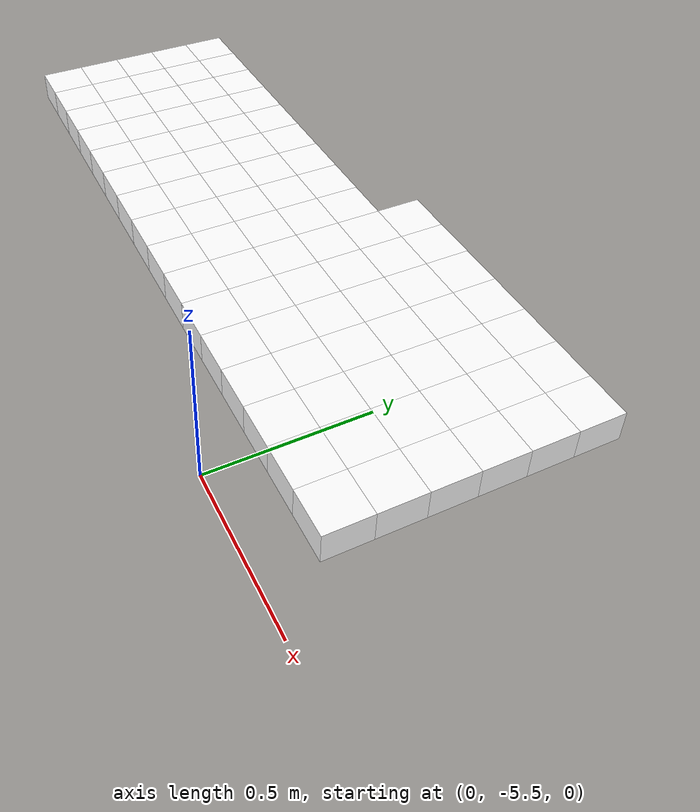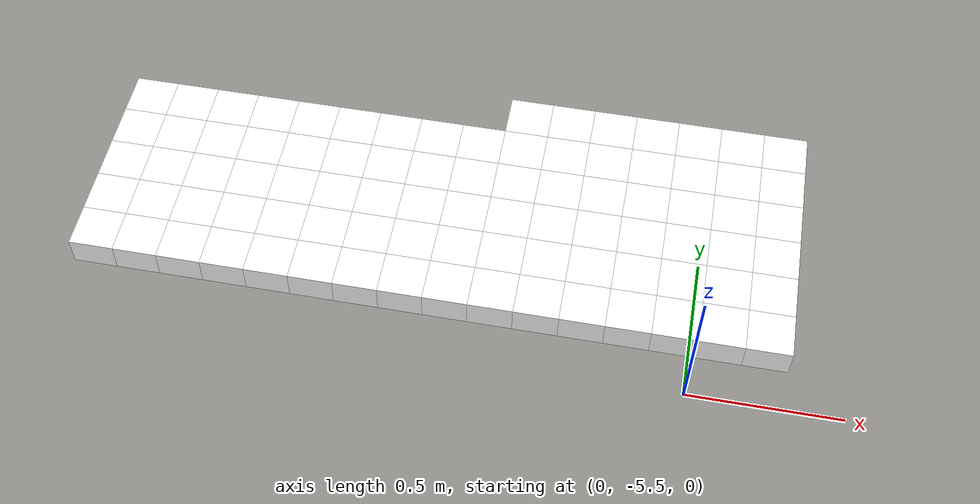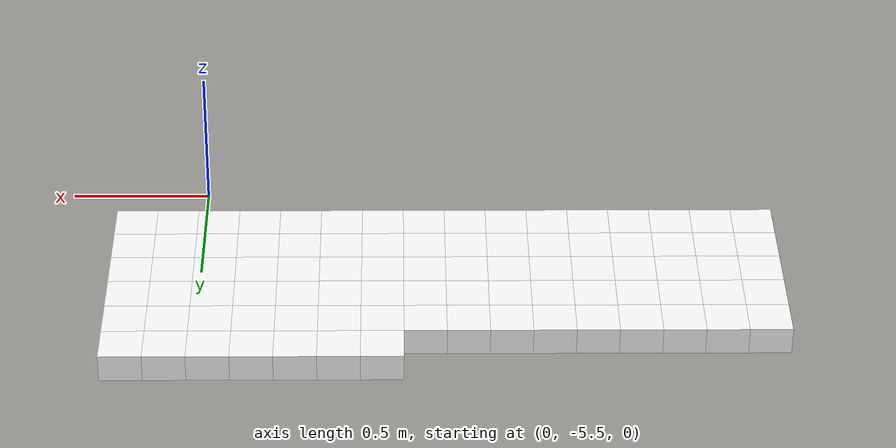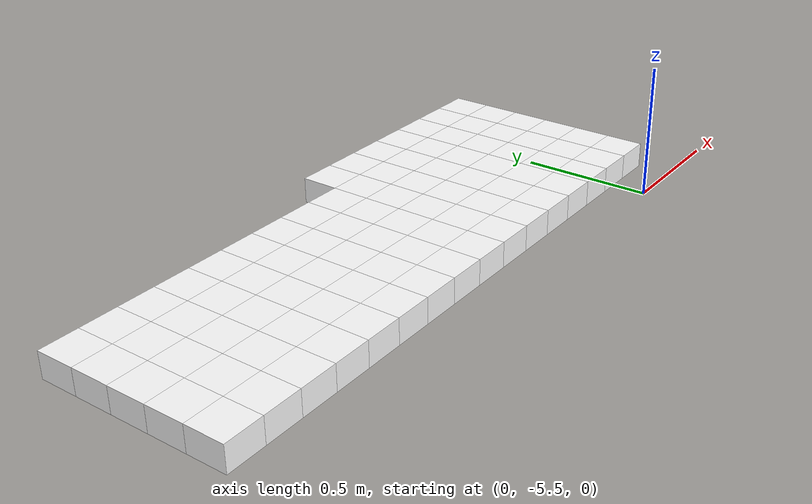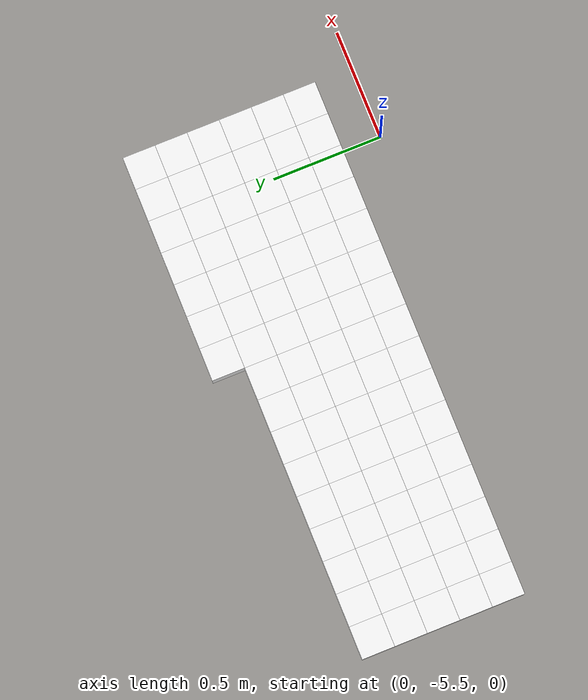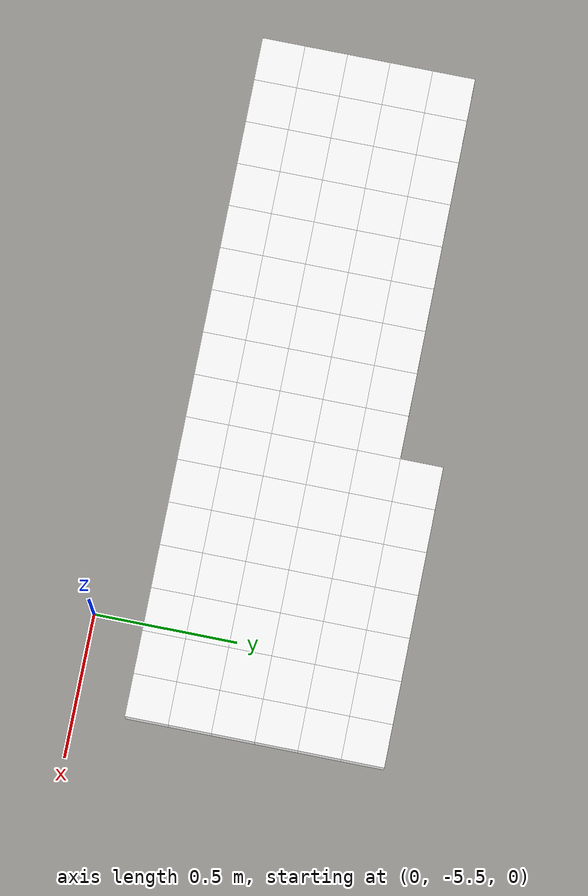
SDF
<sdf version="1.7">
 <world name="default">
  <include><uri>model://sun</uri></include>
  <model name="static_environment">
   <static>true</static>
   <link name="region_755">
    <pose>-2.000467147019006 -4.649999979216541 0.0 0.0 0.0 4.7123</pose>
    <collision name="region_755_collision">
     <geometry><box><size>0.15 0.15 0.1</size></box></geometry>
     <surface><friction><ode><mu>1.0</mu><mu2>1.0</mu2></ode></friction></surface>
    </collision>
    <visual name="region_755_visual">
     <geometry><box><size>0.15 0.15 0.1</size></box></geometry>
     <material><ambient>1.0 1.0 1.0 1.0</ambient><diffuse>1.0 1.0 1.0 1.0</diffuse></material>
    </visual>
   </link>
   <link name="region_756">
    <pose>-2.0004804940766916 -4.799999978622728 0.0 0.0 0.0 4.7123</pose>
    <collision name="region_756_collision">
     <geometry><box><size>0.15 0.15 0.1</size></box></geometry>
     <surface><friction><ode><mu>1.0</mu><mu2>1.0</mu2></ode></friction></surface>
    </collision>
    <visual name="region_756_visual">
     <geometry><box><size>0.15 0.15 0.1</size></box></geometry>
     <material><ambient>1.0 1.0 1.0 1.0</ambient><diffuse>1.0 1.0 1.0 1.0</diffuse></material>
    </visual>
   </link>
   <link name="region_757">
    <pose>-2.0004938411343773 -4.949999978028915 0.0 0.0 0.0 4.7123</pose>
    <collision name="region_757_collision">
     <geometry><box><size>0.15 0.15 0.1</size></box></geometry>
     <surface><friction><ode><mu>1.0</mu><mu2>1.0</mu2></ode></friction></surface>
    </collision>
    <visual name="region_757_visual">
     <geometry><box><size>0.15 0.15 0.1</size></box></geometry>
     <material><ambient>1.0 1.0 1.0 1.0</ambient><diffuse>1.0 1.0 1.0 1.0</diffuse></material>
    </visual>
   </link>
   <link name="region_758">
    <pose>-2.000507188192063 -5.099999977435102 0.0 0.0 0.0 4.7123</pose>
    <collision name="region_758_collision">
     <geometry><box><size>0.15 0.15 0.1</size></box></geometry>
     <surface><friction><ode><mu>1.0</mu><mu2>1.0</mu2></ode></friction></surface>
    </collision>
    <visual name="region_758_visual">
     <geometry><box><size>0.15 0.15 0.1</size></box></geometry>
     <material><ambient>1.0 1.0 1.0 1.0</ambient><diffuse>1.0 1.0 1.0 1.0</diffuse></material>
    </visual>
   </link>
   <link name="region_759">
    <pose>-2.0005205352497493 -5.2499999768412895 0.0 0.0 0.0 4.7123</pose>
    <collision name="region_759_collision">
     <geometry><box><size>0.15 0.15 0.1</size></box></geometry>
     <surface><friction><ode><mu>1.0</mu><mu2>1.0</mu2></ode></friction></surface>
    </collision>
    <visual name="region_759_visual">
     <geometry><box><size>0.15 0.15 0.1</size></box></geometry>
     <material><ambient>1.0 1.0 1.0 1.0</ambient><diffuse>1.0 1.0 1.0 1.0</diffuse></material>
    </visual>
   </link>
   <link name="region_765">
    <pose>-1.850467147612819 -4.650013326274227 0.0 0.0 0.0 4.7123</pose>
    <collision name="region_765_collision">
     <geometry><box><size>0.15 0.15 0.1</size></box></geometry>
     <surface><friction><ode><mu>1.0</mu><mu2>1.0</mu2></ode></friction></surface>
    </collision>
    <visual name="region_765_visual">
     <geometry><box><size>0.15 0.15 0.1</size></box></geometry>
     <material><ambient>1.0 1.0 1.0 1.0</ambient><diffuse>1.0 1.0 1.0 1.0</diffuse></material>
    </visual>
   </link>
   <link name="region_766">
    <pose>-1.8504804946705047 -4.800013325680414 0.0 0.0 0.0 4.7123</pose>
    <collision name="region_766_collision">
     <geometry><box><size>0.15 0.15 0.1</size></box></geometry>
     <surface><friction><ode><mu>1.0</mu><mu2>1.0</mu2></ode></friction></surface>
    </collision>
    <visual name="region_766_visual">
     <geometry><box><size>0.15 0.15 0.1</size></box></geometry>
     <material><ambient>1.0 1.0 1.0 1.0</ambient><diffuse>1.0 1.0 1.0 1.0</diffuse></material>
    </visual>
   </link>
   <link name="region_767">
    <pose>-1.8504938417281906 -4.950013325086601 0.0 0.0 0.0 4.7123</pose>
    <collision name="region_767_collision">
     <geometry><box><size>0.15 0.15 0.1</size></box></geometry>
     <surface><friction><ode><mu>1.0</mu><mu2>1.0</mu2></ode></friction></surface>
    </collision>
    <visual name="region_767_visual">
     <geometry><box><size>0.15 0.15 0.1</size></box></geometry>
     <material><ambient>1.0 1.0 1.0 1.0</ambient><diffuse>1.0 1.0 1.0 1.0</diffuse></material>
    </visual>
   </link>
   <link name="region_768">
    <pose>-1.8505071887858766 -5.100013324492788 0.0 0.0 0.0 4.7123</pose>
    <collision name="region_768_collision">
     <geometry><box><size>0.15 0.15 0.1</size></box></geometry>
     <surface><friction><ode><mu>1.0</mu><mu2>1.0</mu2></ode></friction></surface>
    </collision>
    <visual name="region_768_visual">
     <geometry><box><size>0.15 0.15 0.1</size></box></geometry>
     <material><ambient>1.0 1.0 1.0 1.0</ambient><diffuse>1.0 1.0 1.0 1.0</diffuse></material>
    </visual>
   </link>
   <link name="region_769">
    <pose>-1.8505205358435624 -5.250013323898975 0.0 0.0 0.0 4.7123</pose>
    <collision name="region_769_collision">
     <geometry><box><size>0.15 0.15 0.1</size></box></geometry>
     <surface><friction><ode><mu>1.0</mu><mu2>1.0</mu2></ode></friction></surface>
    </collision>
    <visual name="region_769_visual">
     <geometry><box><size>0.15 0.15 0.1</size></box></geometry>
     <material><ambient>1.0 1.0 1.0 1.0</ambient><diffuse>1.0 1.0 1.0 1.0</diffuse></material>
    </visual>
   </link>
   <link name="region_775">
    <pose>-1.700467148206632 -4.650026673331912 0.0 0.0 0.0 4.7123</pose>
    <collision name="region_775_collision">
     <geometry><box><size>0.15 0.15 0.1</size></box></geometry>
     <surface><friction><ode><mu>1.0</mu><mu2>1.0</mu2></ode></friction></surface>
    </collision>
    <visual name="region_775_visual">
     <geometry><box><size>0.15 0.15 0.1</size></box></geometry>
     <material><ambient>1.0 1.0 1.0 1.0</ambient><diffuse>1.0 1.0 1.0 1.0</diffuse></material>
    </visual>
   </link>
   <link name="region_776">
    <pose>-1.700480495264318 -4.8000266727381 0.0 0.0 0.0 4.7123</pose>
    <collision name="region_776_collision">
     <geometry><box><size>0.15 0.15 0.1</size></box></geometry>
     <surface><friction><ode><mu>1.0</mu><mu2>1.0</mu2></ode></friction></surface>
    </collision>
    <visual name="region_776_visual">
     <geometry><box><size>0.15 0.15 0.1</size></box></geometry>
     <material><ambient>1.0 1.0 1.0 1.0</ambient><diffuse>1.0 1.0 1.0 1.0</diffuse></material>
    </visual>
   </link>
   <link name="region_777">
    <pose>-1.7004938423220037 -4.950026672144287 0.0 0.0 0.0 4.7123</pose>
    <collision name="region_777_collision">
     <geometry><box><size>0.15 0.15 0.1</size></box></geometry>
     <surface><friction><ode><mu>1.0</mu><mu2>1.0</mu2></ode></friction></surface>
    </collision>
    <visual name="region_777_visual">
     <geometry><box><size>0.15 0.15 0.1</size></box></geometry>
     <material><ambient>1.0 1.0 1.0 1.0</ambient><diffuse>1.0 1.0 1.0 1.0</diffuse></material>
    </visual>
   </link>
   <link name="region_778">
    <pose>-1.7005071893796897 -5.100026671550474 0.0 0.0 0.0 4.7123</pose>
    <collision name="region_778_collision">
     <geometry><box><size>0.15 0.15 0.1</size></box></geometry>
     <surface><friction><ode><mu>1.0</mu><mu2>1.0</mu2></ode></friction></surface>
    </collision>
    <visual name="region_778_visual">
     <geometry><box><size>0.15 0.15 0.1</size></box></geometry>
     <material><ambient>1.0 1.0 1.0 1.0</ambient><diffuse>1.0 1.0 1.0 1.0</diffuse></material>
    </visual>
   </link>
   <link name="region_779">
    <pose>-1.7005205364373754 -5.250026670956661 0.0 0.0 0.0 4.7123</pose>
    <collision name="region_779_collision">
     <geometry><box><size>0.15 0.15 0.1</size></box></geometry>
     <surface><friction><ode><mu>1.0</mu><mu2>1.0</mu2></ode></friction></surface>
    </collision>
    <visual name="region_779_visual">
     <geometry><box><size>0.15 0.15 0.1</size></box></geometry>
     <material><ambient>1.0 1.0 1.0 1.0</ambient><diffuse>1.0 1.0 1.0 1.0</diffuse></material>
    </visual>
   </link>
   <link name="region_785">
    <pose>-1.5504671488004453 -4.650040020389598 0.0 0.0 0.0 4.7123</pose>
    <collision name="region_785_collision">
     <geometry><box><size>0.15 0.15 0.1</size></box></geometry>
     <surface><friction><ode><mu>1.0</mu><mu2>1.0</mu2></ode></friction></surface>
    </collision>
    <visual name="region_785_visual">
     <geometry><box><size>0.15 0.15 0.1</size></box></geometry>
     <material><ambient>1.0 1.0 1.0 1.0</ambient><diffuse>1.0 1.0 1.0 1.0</diffuse></material>
    </visual>
   </link>
   <link name="region_786">
    <pose>-1.550480495858131 -4.8000400197957855 0.0 0.0 0.0 4.7123</pose>
    <collision name="region_786_collision">
     <geometry><box><size>0.15 0.15 0.1</size></box></geometry>
     <surface><friction><ode><mu>1.0</mu><mu2>1.0</mu2></ode></friction></surface>
    </collision>
    <visual name="region_786_visual">
     <geometry><box><size>0.15 0.15 0.1</size></box></geometry>
     <material><ambient>1.0 1.0 1.0 1.0</ambient><diffuse>1.0 1.0 1.0 1.0</diffuse></material>
    </visual>
   </link>
   <link name="region_787">
    <pose>-1.550493842915817 -4.950040019201973 0.0 0.0 0.0 4.7123</pose>
    <collision name="region_787_collision">
     <geometry><box><size>0.15 0.15 0.1</size></box></geometry>
     <surface><friction><ode><mu>1.0</mu><mu2>1.0</mu2></ode></friction></surface>
    </collision>
    <visual name="region_787_visual">
     <geometry><box><size>0.15 0.15 0.1</size></box></geometry>
     <material><ambient>1.0 1.0 1.0 1.0</ambient><diffuse>1.0 1.0 1.0 1.0</diffuse></material>
    </visual>
   </link>
   <link name="region_788">
    <pose>-1.5505071899735028 -5.10004001860816 0.0 0.0 0.0 4.7123</pose>
    <collision name="region_788_collision">
     <geometry><box><size>0.15 0.15 0.1</size></box></geometry>
     <surface><friction><ode><mu>1.0</mu><mu2>1.0</mu2></ode></friction></surface>
    </collision>
    <visual name="region_788_visual">
     <geometry><box><size>0.15 0.15 0.1</size></box></geometry>
     <material><ambient>1.0 1.0 1.0 1.0</ambient><diffuse>1.0 1.0 1.0 1.0</diffuse></material>
    </visual>
   </link>
   <link name="region_789">
    <pose>-1.5505205370311888 -5.250040018014347 0.0 0.0 0.0 4.7123</pose>
    <collision name="region_789_collision">
     <geometry><box><size>0.15 0.15 0.1</size></box></geometry>
     <surface><friction><ode><mu>1.0</mu><mu2>1.0</mu2></ode></friction></surface>
    </collision>
    <visual name="region_789_visual">
     <geometry><box><size>0.15 0.15 0.1</size></box></geometry>
     <material><ambient>1.0 1.0 1.0 1.0</ambient><diffuse>1.0 1.0 1.0 1.0</diffuse></material>
    </visual>
   </link>
   <link name="region_795">
    <pose>-1.4004671493942584 -4.650053367447284 0.0 0.0 0.0 4.7123</pose>
    <collision name="region_795_collision">
     <geometry><box><size>0.15 0.15 0.1</size></box></geometry>
     <surface><friction><ode><mu>1.0</mu><mu2>1.0</mu2></ode></friction></surface>
    </collision>
    <visual name="region_795_visual">
     <geometry><box><size>0.15 0.15 0.1</size></box></geometry>
     <material><ambient>1.0 1.0 1.0 1.0</ambient><diffuse>1.0 1.0 1.0 1.0</diffuse></material>
    </visual>
   </link>
   <link name="region_796">
    <pose>-1.4004804964519444 -4.800053366853471 0.0 0.0 0.0 4.7123</pose>
    <collision name="region_796_collision">
     <geometry><box><size>0.15 0.15 0.1</size></box></geometry>
     <surface><friction><ode><mu>1.0</mu><mu2>1.0</mu2></ode></friction></surface>
    </collision>
    <visual name="region_796_visual">
     <geometry><box><size>0.15 0.15 0.1</size></box></geometry>
     <material><ambient>1.0 1.0 1.0 1.0</ambient><diffuse>1.0 1.0 1.0 1.0</diffuse></material>
    </visual>
   </link>
   <link name="region_797">
    <pose>-1.4004938435096301 -4.950053366259659 0.0 0.0 0.0 4.7123</pose>
    <collision name="region_797_collision">
     <geometry><box><size>0.15 0.15 0.1</size></box></geometry>
     <surface><friction><ode><mu>1.0</mu><mu2>1.0</mu2></ode></friction></surface>
    </collision>
    <visual name="region_797_visual">
     <geometry><box><size>0.15 0.15 0.1</size></box></geometry>
     <material><ambient>1.0 1.0 1.0 1.0</ambient><diffuse>1.0 1.0 1.0 1.0</diffuse></material>
    </visual>
   </link>
   <link name="region_798">
    <pose>-1.400507190567316 -5.100053365665846 0.0 0.0 0.0 4.7123</pose>
    <collision name="region_798_collision">
     <geometry><box><size>0.15 0.15 0.1</size></box></geometry>
     <surface><friction><ode><mu>1.0</mu><mu2>1.0</mu2></ode></friction></surface>
    </collision>
    <visual name="region_798_visual">
     <geometry><box><size>0.15 0.15 0.1</size></box></geometry>
     <material><ambient>1.0 1.0 1.0 1.0</ambient><diffuse>1.0 1.0 1.0 1.0</diffuse></material>
    </visual>
   </link>
   <link name="region_799">
    <pose>-1.400520537625002 -5.250053365072033 0.0 0.0 0.0 4.7123</pose>
    <collision name="region_799_collision">
     <geometry><box><size>0.15 0.15 0.1</size></box></geometry>
     <surface><friction><ode><mu>1.0</mu><mu2>1.0</mu2></ode></friction></surface>
    </collision>
    <visual name="region_799_visual">
     <geometry><box><size>0.15 0.15 0.1</size></box></geometry>
     <material><ambient>1.0 1.0 1.0 1.0</ambient><diffuse>1.0 1.0 1.0 1.0</diffuse></material>
    </visual>
   </link>
   <link name="region_805">
    <pose>-1.2504671499880715 -4.6500667145049706 0.0 0.0 0.0 4.7123</pose>
    <collision name="region_805_collision">
     <geometry><box><size>0.15 0.15 0.1</size></box></geometry>
     <surface><friction><ode><mu>1.0</mu><mu2>1.0</mu2></ode></friction></surface>
    </collision>
    <visual name="region_805_visual">
     <geometry><box><size>0.15 0.15 0.1</size></box></geometry>
     <material><ambient>1.0 1.0 1.0 1.0</ambient><diffuse>1.0 1.0 1.0 1.0</diffuse></material>
    </visual>
   </link>
   <link name="region_806">
    <pose>-1.2504804970457575 -4.800066713911157 0.0 0.0 0.0 4.7123</pose>
    <collision name="region_806_collision">
     <geometry><box><size>0.15 0.15 0.1</size></box></geometry>
     <surface><friction><ode><mu>1.0</mu><mu2>1.0</mu2></ode></friction></surface>
    </collision>
    <visual name="region_806_visual">
     <geometry><box><size>0.15 0.15 0.1</size></box></geometry>
     <material><ambient>1.0 1.0 1.0 1.0</ambient><diffuse>1.0 1.0 1.0 1.0</diffuse></material>
    </visual>
   </link>
   <link name="region_807">
    <pose>-1.2504938441034432 -4.950066713317344 0.0 0.0 0.0 4.7123</pose>
    <collision name="region_807_collision">
     <geometry><box><size>0.15 0.15 0.1</size></box></geometry>
     <surface><friction><ode><mu>1.0</mu><mu2>1.0</mu2></ode></friction></surface>
    </collision>
    <visual name="region_807_visual">
     <geometry><box><size>0.15 0.15 0.1</size></box></geometry>
     <material><ambient>1.0 1.0 1.0 1.0</ambient><diffuse>1.0 1.0 1.0 1.0</diffuse></material>
    </visual>
   </link>
   <link name="region_808">
    <pose>-1.2505071911611292 -5.100066712723532 0.0 0.0 0.0 4.7123</pose>
    <collision name="region_808_collision">
     <geometry><box><size>0.15 0.15 0.1</size></box></geometry>
     <surface><friction><ode><mu>1.0</mu><mu2>1.0</mu2></ode></friction></surface>
    </collision>
    <visual name="region_808_visual">
     <geometry><box><size>0.15 0.15 0.1</size></box></geometry>
     <material><ambient>1.0 1.0 1.0 1.0</ambient><diffuse>1.0 1.0 1.0 1.0</diffuse></material>
    </visual>
   </link>
   <link name="region_809">
    <pose>-1.2505205382188151 -5.250066712129719 0.0 0.0 0.0 4.7123</pose>
    <collision name="region_809_collision">
     <geometry><box><size>0.15 0.15 0.1</size></box></geometry>
     <surface><friction><ode><mu>1.0</mu><mu2>1.0</mu2></ode></friction></surface>
    </collision>
    <visual name="region_809_visual">
     <geometry><box><size>0.15 0.15 0.1</size></box></geometry>
     <material><ambient>1.0 1.0 1.0 1.0</ambient><diffuse>1.0 1.0 1.0 1.0</diffuse></material>
    </visual>
   </link>
   <link name="region_815">
    <pose>-1.1004671505818848 -4.650080061562656 0.0 0.0 0.0 4.7123</pose>
    <collision name="region_815_collision">
     <geometry><box><size>0.15 0.15 0.1</size></box></geometry>
     <surface><friction><ode><mu>1.0</mu><mu2>1.0</mu2></ode></friction></surface>
    </collision>
    <visual name="region_815_visual">
     <geometry><box><size>0.15 0.15 0.1</size></box></geometry>
     <material><ambient>1.0 1.0 1.0 1.0</ambient><diffuse>1.0 1.0 1.0 1.0</diffuse></material>
    </visual>
   </link>
   <link name="region_816">
    <pose>-1.1004804976395706 -4.800080060968843 0.0 0.0 0.0 4.7123</pose>
    <collision name="region_816_collision">
     <geometry><box><size>0.15 0.15 0.1</size></box></geometry>
     <surface><friction><ode><mu>1.0</mu><mu2>1.0</mu2></ode></friction></surface>
    </collision>
    <visual name="region_816_visual">
     <geometry><box><size>0.15 0.15 0.1</size></box></geometry>
     <material><ambient>1.0 1.0 1.0 1.0</ambient><diffuse>1.0 1.0 1.0 1.0</diffuse></material>
    </visual>
   </link>
   <link name="region_817">
    <pose>-1.1004938446972565 -4.95008006037503 0.0 0.0 0.0 4.7123</pose>
    <collision name="region_817_collision">
     <geometry><box><size>0.15 0.15 0.1</size></box></geometry>
     <surface><friction><ode><mu>1.0</mu><mu2>1.0</mu2></ode></friction></surface>
    </collision>
    <visual name="region_817_visual">
     <geometry><box><size>0.15 0.15 0.1</size></box></geometry>
     <material><ambient>1.0 1.0 1.0 1.0</ambient><diffuse>1.0 1.0 1.0 1.0</diffuse></material>
    </visual>
   </link>
   <link name="region_818">
    <pose>-1.1005071917549425 -5.1000800597812175 0.0 0.0 0.0 4.7123</pose>
    <collision name="region_818_collision">
     <geometry><box><size>0.15 0.15 0.1</size></box></geometry>
     <surface><friction><ode><mu>1.0</mu><mu2>1.0</mu2></ode></friction></surface>
    </collision>
    <visual name="region_818_visual">
     <geometry><box><size>0.15 0.15 0.1</size></box></geometry>
     <material><ambient>1.0 1.0 1.0 1.0</ambient><diffuse>1.0 1.0 1.0 1.0</diffuse></material>
    </visual>
   </link>
   <link name="region_819">
    <pose>-1.1005205388126282 -5.250080059187405 0.0 0.0 0.0 4.7123</pose>
    <collision name="region_819_collision">
     <geometry><box><size>0.15 0.15 0.1</size></box></geometry>
     <surface><friction><ode><mu>1.0</mu><mu2>1.0</mu2></ode></friction></surface>
    </collision>
    <visual name="region_819_visual">
     <geometry><box><size>0.15 0.15 0.1</size></box></geometry>
     <material><ambient>1.0 1.0 1.0 1.0</ambient><diffuse>1.0 1.0 1.0 1.0</diffuse></material>
    </visual>
   </link>
   <link name="region_825">
    <pose>-0.9504671511756979 -4.650093408620342 0.0 0.0 0.0 4.7123</pose>
    <collision name="region_825_collision">
     <geometry><box><size>0.15 0.15 0.1</size></box></geometry>
     <surface><friction><ode><mu>1.0</mu><mu2>1.0</mu2></ode></friction></surface>
    </collision>
    <visual name="region_825_visual">
     <geometry><box><size>0.15 0.15 0.1</size></box></geometry>
     <material><ambient>1.0 1.0 1.0 1.0</ambient><diffuse>1.0 1.0 1.0 1.0</diffuse></material>
    </visual>
   </link>
   <link name="region_826">
    <pose>-0.9504804982333839 -4.800093408026529 0.0 0.0 0.0 4.7123</pose>
    <collision name="region_826_collision">
     <geometry><box><size>0.15 0.15 0.1</size></box></geometry>
     <surface><friction><ode><mu>1.0</mu><mu2>1.0</mu2></ode></friction></surface>
    </collision>
    <visual name="region_826_visual">
     <geometry><box><size>0.15 0.15 0.1</size></box></geometry>
     <material><ambient>1.0 1.0 1.0 1.0</ambient><diffuse>1.0 1.0 1.0 1.0</diffuse></material>
    </visual>
   </link>
   <link name="region_827">
    <pose>-0.9504938452910696 -4.950093407432716 0.0 0.0 0.0 4.7123</pose>
    <collision name="region_827_collision">
     <geometry><box><size>0.15 0.15 0.1</size></box></geometry>
     <surface><friction><ode><mu>1.0</mu><mu2>1.0</mu2></ode></friction></surface>
    </collision>
    <visual name="region_827_visual">
     <geometry><box><size>0.15 0.15 0.1</size></box></geometry>
     <material><ambient>1.0 1.0 1.0 1.0</ambient><diffuse>1.0 1.0 1.0 1.0</diffuse></material>
    </visual>
   </link>
   <link name="region_828">
    <pose>-0.9505071923487556 -5.100093406838903 0.0 0.0 0.0 4.7123</pose>
    <collision name="region_828_collision">
     <geometry><box><size>0.15 0.15 0.1</size></box></geometry>
     <surface><friction><ode><mu>1.0</mu><mu2>1.0</mu2></ode></friction></surface>
    </collision>
    <visual name="region_828_visual">
     <geometry><box><size>0.15 0.15 0.1</size></box></geometry>
     <material><ambient>1.0 1.0 1.0 1.0</ambient><diffuse>1.0 1.0 1.0 1.0</diffuse></material>
    </visual>
   </link>
   <link name="region_829">
    <pose>-0.9505205394064415 -5.250093406245091 0.0 0.0 0.0 4.7123</pose>
    <collision name="region_829_collision">
     <geometry><box><size>0.15 0.15 0.1</size></box></geometry>
     <surface><friction><ode><mu>1.0</mu><mu2>1.0</mu2></ode></friction></surface>
    </collision>
    <visual name="region_829_visual">
     <geometry><box><size>0.15 0.15 0.1</size></box></geometry>
     <material><ambient>1.0 1.0 1.0 1.0</ambient><diffuse>1.0 1.0 1.0 1.0</diffuse></material>
    </visual>
   </link>
   <link name="region_835">
    <pose>-0.8004671517695112 -4.650106755678028 0.0 0.0 0.0 4.7123</pose>
    <collision name="region_835_collision">
     <geometry><box><size>0.15 0.15 0.1</size></box></geometry>
     <surface><friction><ode><mu>1.0</mu><mu2>1.0</mu2></ode></friction></surface>
    </collision>
    <visual name="region_835_visual">
     <geometry><box><size>0.15 0.15 0.1</size></box></geometry>
     <material><ambient>1.0 1.0 1.0 1.0</ambient><diffuse>1.0 1.0 1.0 1.0</diffuse></material>
    </visual>
   </link>
   <link name="region_836">
    <pose>-0.8004804988271972 -4.800106755084215 0.0 0.0 0.0 4.7123</pose>
    <collision name="region_836_collision">
     <geometry><box><size>0.15 0.15 0.1</size></box></geometry>
     <surface><friction><ode><mu>1.0</mu><mu2>1.0</mu2></ode></friction></surface>
    </collision>
    <visual name="region_836_visual">
     <geometry><box><size>0.15 0.15 0.1</size></box></geometry>
     <material><ambient>1.0 1.0 1.0 1.0</ambient><diffuse>1.0 1.0 1.0 1.0</diffuse></material>
    </visual>
   </link>
   <link name="region_837">
    <pose>-0.8004938458848829 -4.9501067544904025 0.0 0.0 0.0 4.7123</pose>
    <collision name="region_837_collision">
     <geometry><box><size>0.15 0.15 0.1</size></box></geometry>
     <surface><friction><ode><mu>1.0</mu><mu2>1.0</mu2></ode></friction></surface>
    </collision>
    <visual name="region_837_visual">
     <geometry><box><size>0.15 0.15 0.1</size></box></geometry>
     <material><ambient>1.0 1.0 1.0 1.0</ambient><diffuse>1.0 1.0 1.0 1.0</diffuse></material>
    </visual>
   </link>
   <link name="region_838">
    <pose>-0.8005071929425689 -5.100106753896589 0.0 0.0 0.0 4.7123</pose>
    <collision name="region_838_collision">
     <geometry><box><size>0.15 0.15 0.1</size></box></geometry>
     <surface><friction><ode><mu>1.0</mu><mu2>1.0</mu2></ode></friction></surface>
    </collision>
    <visual name="region_838_visual">
     <geometry><box><size>0.15 0.15 0.1</size></box></geometry>
     <material><ambient>1.0 1.0 1.0 1.0</ambient><diffuse>1.0 1.0 1.0 1.0</diffuse></material>
    </visual>
   </link>
   <link name="region_839">
    <pose>-0.8005205400002549 -5.250106753302776 0.0 0.0 0.0 4.7123</pose>
    <collision name="region_839_collision">
     <geometry><box><size>0.15 0.15 0.1</size></box></geometry>
     <surface><friction><ode><mu>1.0</mu><mu2>1.0</mu2></ode></friction></surface>
    </collision>
    <visual name="region_839_visual">
     <geometry><box><size>0.15 0.15 0.1</size></box></geometry>
     <material><ambient>1.0 1.0 1.0 1.0</ambient><diffuse>1.0 1.0 1.0 1.0</diffuse></material>
    </visual>
   </link>
   <link name="region_844">
    <pose>-0.6504538053056386 -4.500120103329526 0.0 0.0 0.0 4.7123</pose>
    <collision name="region_844_collision">
     <geometry><box><size>0.15 0.15 0.1</size></box></geometry>
     <surface><friction><ode><mu>1.0</mu><mu2>1.0</mu2></ode></friction></surface>
    </collision>
    <visual name="region_844_visual">
     <geometry><box><size>0.15 0.15 0.1</size></box></geometry>
     <material><ambient>1.0 1.0 1.0 1.0</ambient><diffuse>1.0 1.0 1.0 1.0</diffuse></material>
    </visual>
   </link>
   <link name="region_845">
    <pose>-0.6504671523633243 -4.6501201027357135 0.0 0.0 0.0 4.7123</pose>
    <collision name="region_845_collision">
     <geometry><box><size>0.15 0.15 0.1</size></box></geometry>
     <surface><friction><ode><mu>1.0</mu><mu2>1.0</mu2></ode></friction></surface>
    </collision>
    <visual name="region_845_visual">
     <geometry><box><size>0.15 0.15 0.1</size></box></geometry>
     <material><ambient>1.0 1.0 1.0 1.0</ambient><diffuse>1.0 1.0 1.0 1.0</diffuse></material>
    </visual>
   </link>
   <link name="region_846">
    <pose>-0.6504804994210103 -4.800120102141901 0.0 0.0 0.0 4.7123</pose>
    <collision name="region_846_collision">
     <geometry><box><size>0.15 0.15 0.1</size></box></geometry>
     <surface><friction><ode><mu>1.0</mu><mu2>1.0</mu2></ode></friction></surface>
    </collision>
    <visual name="region_846_visual">
     <geometry><box><size>0.15 0.15 0.1</size></box></geometry>
     <material><ambient>1.0 1.0 1.0 1.0</ambient><diffuse>1.0 1.0 1.0 1.0</diffuse></material>
    </visual>
   </link>
   <link name="region_847">
    <pose>-0.650493846478696 -4.950120101548088 0.0 0.0 0.0 4.7123</pose>
    <collision name="region_847_collision">
     <geometry><box><size>0.15 0.15 0.1</size></box></geometry>
     <surface><friction><ode><mu>1.0</mu><mu2>1.0</mu2></ode></friction></surface>
    </collision>
    <visual name="region_847_visual">
     <geometry><box><size>0.15 0.15 0.1</size></box></geometry>
     <material><ambient>1.0 1.0 1.0 1.0</ambient><diffuse>1.0 1.0 1.0 1.0</diffuse></material>
    </visual>
   </link>
   <link name="region_848">
    <pose>-0.650507193536382 -5.100120100954276 0.0 0.0 0.0 4.7123</pose>
    <collision name="region_848_collision">
     <geometry><box><size>0.15 0.15 0.1</size></box></geometry>
     <surface><friction><ode><mu>1.0</mu><mu2>1.0</mu2></ode></friction></surface>
    </collision>
    <visual name="region_848_visual">
     <geometry><box><size>0.15 0.15 0.1</size></box></geometry>
     <material><ambient>1.0 1.0 1.0 1.0</ambient><diffuse>1.0 1.0 1.0 1.0</diffuse></material>
    </visual>
   </link>
   <link name="region_849">
    <pose>-0.6505205405940679 -5.250120100360462 0.0 0.0 0.0 4.7123</pose>
    <collision name="region_849_collision">
     <geometry><box><size>0.15 0.15 0.1</size></box></geometry>
     <surface><friction><ode><mu>1.0</mu><mu2>1.0</mu2></ode></friction></surface>
    </collision>
    <visual name="region_849_visual">
     <geometry><box><size>0.15 0.15 0.1</size></box></geometry>
     <material><ambient>1.0 1.0 1.0 1.0</ambient><diffuse>1.0 1.0 1.0 1.0</diffuse></material>
    </visual>
   </link>
   <link name="region_854">
    <pose>-0.5004538058994519 -4.500133450387212 0.0 0.0 0.0 4.7123</pose>
    <collision name="region_854_collision">
     <geometry><box><size>0.15 0.15 0.1</size></box></geometry>
     <surface><friction><ode><mu>1.0</mu><mu2>1.0</mu2></ode></friction></surface>
    </collision>
    <visual name="region_854_visual">
     <geometry><box><size>0.15 0.15 0.1</size></box></geometry>
     <material><ambient>1.0 1.0 1.0 1.0</ambient><diffuse>1.0 1.0 1.0 1.0</diffuse></material>
    </visual>
   </link>
   <link name="region_855">
    <pose>-0.5004671529571376 -4.650133449793399 0.0 0.0 0.0 4.7123</pose>
    <collision name="region_855_collision">
     <geometry><box><size>0.15 0.15 0.1</size></box></geometry>
     <surface><friction><ode><mu>1.0</mu><mu2>1.0</mu2></ode></friction></surface>
    </collision>
    <visual name="region_855_visual">
     <geometry><box><size>0.15 0.15 0.1</size></box></geometry>
     <material><ambient>1.0 1.0 1.0 1.0</ambient><diffuse>1.0 1.0 1.0 1.0</diffuse></material>
    </visual>
   </link>
   <link name="region_856">
    <pose>-0.5004805000148236 -4.800133449199587 0.0 0.0 0.0 4.7123</pose>
    <collision name="region_856_collision">
     <geometry><box><size>0.15 0.15 0.1</size></box></geometry>
     <surface><friction><ode><mu>1.0</mu><mu2>1.0</mu2></ode></friction></surface>
    </collision>
    <visual name="region_856_visual">
     <geometry><box><size>0.15 0.15 0.1</size></box></geometry>
     <material><ambient>1.0 1.0 1.0 1.0</ambient><diffuse>1.0 1.0 1.0 1.0</diffuse></material>
    </visual>
   </link>
   <link name="region_857">
    <pose>-0.5004938470725093 -4.950133448605774 0.0 0.0 0.0 4.7123</pose>
    <collision name="region_857_collision">
     <geometry><box><size>0.15 0.15 0.1</size></box></geometry>
     <surface><friction><ode><mu>1.0</mu><mu2>1.0</mu2></ode></friction></surface>
    </collision>
    <visual name="region_857_visual">
     <geometry><box><size>0.15 0.15 0.1</size></box></geometry>
     <material><ambient>1.0 1.0 1.0 1.0</ambient><diffuse>1.0 1.0 1.0 1.0</diffuse></material>
    </visual>
   </link>
   <link name="region_858">
    <pose>-0.5005071941301953 -5.100133448011961 0.0 0.0 0.0 4.7123</pose>
    <collision name="region_858_collision">
     <geometry><box><size>0.15 0.15 0.1</size></box></geometry>
     <surface><friction><ode><mu>1.0</mu><mu2>1.0</mu2></ode></friction></surface>
    </collision>
    <visual name="region_858_visual">
     <geometry><box><size>0.15 0.15 0.1</size></box></geometry>
     <material><ambient>1.0 1.0 1.0 1.0</ambient><diffuse>1.0 1.0 1.0 1.0</diffuse></material>
    </visual>
   </link>
   <link name="region_859">
    <pose>-0.5005205411878813 -5.250133447418148 0.0 0.0 0.0 4.7123</pose>
    <collision name="region_859_collision">
     <geometry><box><size>0.15 0.15 0.1</size></box></geometry>
     <surface><friction><ode><mu>1.0</mu><mu2>1.0</mu2></ode></friction></surface>
    </collision>
    <visual name="region_859_visual">
     <geometry><box><size>0.15 0.15 0.1</size></box></geometry>
     <material><ambient>1.0 1.0 1.0 1.0</ambient><diffuse>1.0 1.0 1.0 1.0</diffuse></material>
    </visual>
   </link>
   <link name="region_864">
    <pose>-0.3504538064932652 -4.5001467974448985 0.0 0.0 0.0 4.7123</pose>
    <collision name="region_864_collision">
     <geometry><box><size>0.15 0.15 0.1</size></box></geometry>
     <surface><friction><ode><mu>1.0</mu><mu2>1.0</mu2></ode></friction></surface>
    </collision>
    <visual name="region_864_visual">
     <geometry><box><size>0.15 0.15 0.1</size></box></geometry>
     <material><ambient>1.0 1.0 1.0 1.0</ambient><diffuse>1.0 1.0 1.0 1.0</diffuse></material>
    </visual>
   </link>
   <link name="region_865">
    <pose>-0.3504671535509509 -4.650146796851085 0.0 0.0 0.0 4.7123</pose>
    <collision name="region_865_collision">
     <geometry><box><size>0.15 0.15 0.1</size></box></geometry>
     <surface><friction><ode><mu>1.0</mu><mu2>1.0</mu2></ode></friction></surface>
    </collision>
    <visual name="region_865_visual">
     <geometry><box><size>0.15 0.15 0.1</size></box></geometry>
     <material><ambient>1.0 1.0 1.0 1.0</ambient><diffuse>1.0 1.0 1.0 1.0</diffuse></material>
    </visual>
   </link>
   <link name="region_866">
    <pose>-0.3504805006086369 -4.800146796257272 0.0 0.0 0.0 4.7123</pose>
    <collision name="region_866_collision">
     <geometry><box><size>0.15 0.15 0.1</size></box></geometry>
     <surface><friction><ode><mu>1.0</mu><mu2>1.0</mu2></ode></friction></surface>
    </collision>
    <visual name="region_866_visual">
     <geometry><box><size>0.15 0.15 0.1</size></box></geometry>
     <material><ambient>1.0 1.0 1.0 1.0</ambient><diffuse>1.0 1.0 1.0 1.0</diffuse></material>
    </visual>
   </link>
   <link name="region_867">
    <pose>-0.35049384766632263 -4.95014679566346 0.0 0.0 0.0 4.7123</pose>
    <collision name="region_867_collision">
     <geometry><box><size>0.15 0.15 0.1</size></box></geometry>
     <surface><friction><ode><mu>1.0</mu><mu2>1.0</mu2></ode></friction></surface>
    </collision>
    <visual name="region_867_visual">
     <geometry><box><size>0.15 0.15 0.1</size></box></geometry>
     <material><ambient>1.0 1.0 1.0 1.0</ambient><diffuse>1.0 1.0 1.0 1.0</diffuse></material>
    </visual>
   </link>
   <link name="region_868">
    <pose>-0.3505071947240086 -5.100146795069647 0.0 0.0 0.0 4.7123</pose>
    <collision name="region_868_collision">
     <geometry><box><size>0.15 0.15 0.1</size></box></geometry>
     <surface><friction><ode><mu>1.0</mu><mu2>1.0</mu2></ode></friction></surface>
    </collision>
    <visual name="region_868_visual">
     <geometry><box><size>0.15 0.15 0.1</size></box></geometry>
     <material><ambient>1.0 1.0 1.0 1.0</ambient><diffuse>1.0 1.0 1.0 1.0</diffuse></material>
    </visual>
   </link>
   <link name="region_869">
    <pose>-0.35052054178169456 -5.250146794475834 0.0 0.0 0.0 4.7123</pose>
    <collision name="region_869_collision">
     <geometry><box><size>0.15 0.15 0.1</size></box></geometry>
     <surface><friction><ode><mu>1.0</mu><mu2>1.0</mu2></ode></friction></surface>
    </collision>
    <visual name="region_869_visual">
     <geometry><box><size>0.15 0.15 0.1</size></box></geometry>
     <material><ambient>1.0 1.0 1.0 1.0</ambient><diffuse>1.0 1.0 1.0 1.0</diffuse></material>
    </visual>
   </link>
   <link name="region_874">
    <pose>-0.2004538070870785 -4.500160144502584 0.0 0.0 0.0 4.7123</pose>
    <collision name="region_874_collision">
     <geometry><box><size>0.15 0.15 0.1</size></box></geometry>
     <surface><friction><ode><mu>1.0</mu><mu2>1.0</mu2></ode></friction></surface>
    </collision>
    <visual name="region_874_visual">
     <geometry><box><size>0.15 0.15 0.1</size></box></geometry>
     <material><ambient>1.0 1.0 1.0 1.0</ambient><diffuse>1.0 1.0 1.0 1.0</diffuse></material>
    </visual>
   </link>
   <link name="region_875">
    <pose>-0.20046715414476424 -4.650160143908772 0.0 0.0 0.0 4.7123</pose>
    <collision name="region_875_collision">
     <geometry><box><size>0.15 0.15 0.1</size></box></geometry>
     <surface><friction><ode><mu>1.0</mu><mu2>1.0</mu2></ode></friction></surface>
    </collision>
    <visual name="region_875_visual">
     <geometry><box><size>0.15 0.15 0.1</size></box></geometry>
     <material><ambient>1.0 1.0 1.0 1.0</ambient><diffuse>1.0 1.0 1.0 1.0</diffuse></material>
    </visual>
   </link>
   <link name="region_876">
    <pose>-0.2004805012024502 -4.800160143314958 0.0 0.0 0.0 4.7123</pose>
    <collision name="region_876_collision">
     <geometry><box><size>0.15 0.15 0.1</size></box></geometry>
     <surface><friction><ode><mu>1.0</mu><mu2>1.0</mu2></ode></friction></surface>
    </collision>
    <visual name="region_876_visual">
     <geometry><box><size>0.15 0.15 0.1</size></box></geometry>
     <material><ambient>1.0 1.0 1.0 1.0</ambient><diffuse>1.0 1.0 1.0 1.0</diffuse></material>
    </visual>
   </link>
   <link name="region_877">
    <pose>-0.20049384826013594 -4.9501601427211455 0.0 0.0 0.0 4.7123</pose>
    <collision name="region_877_collision">
     <geometry><box><size>0.15 0.15 0.1</size></box></geometry>
     <surface><friction><ode><mu>1.0</mu><mu2>1.0</mu2></ode></friction></surface>
    </collision>
    <visual name="region_877_visual">
     <geometry><box><size>0.15 0.15 0.1</size></box></geometry>
     <material><ambient>1.0 1.0 1.0 1.0</ambient><diffuse>1.0 1.0 1.0 1.0</diffuse></material>
    </visual>
   </link>
   <link name="region_878">
    <pose>-0.2005071953178219 -5.100160142127333 0.0 0.0 0.0 4.7123</pose>
    <collision name="region_878_collision">
     <geometry><box><size>0.15 0.15 0.1</size></box></geometry>
     <surface><friction><ode><mu>1.0</mu><mu2>1.0</mu2></ode></friction></surface>
    </collision>
    <visual name="region_878_visual">
     <geometry><box><size>0.15 0.15 0.1</size></box></geometry>
     <material><ambient>1.0 1.0 1.0 1.0</ambient><diffuse>1.0 1.0 1.0 1.0</diffuse></material>
    </visual>
   </link>
   <link name="region_879">
    <pose>-0.20052054237550787 -5.25016014153352 0.0 0.0 0.0 4.7123</pose>
    <collision name="region_879_collision">
     <geometry><box><size>0.15 0.15 0.1</size></box></geometry>
     <surface><friction><ode><mu>1.0</mu><mu2>1.0</mu2></ode></friction></surface>
    </collision>
    <visual name="region_879_visual">
     <geometry><box><size>0.15 0.15 0.1</size></box></geometry>
     <material><ambient>1.0 1.0 1.0 1.0</ambient><diffuse>1.0 1.0 1.0 1.0</diffuse></material>
    </visual>
   </link>
   <link name="region_884">
    <pose>-0.050453807680891805 -4.50017349156027 0.0 0.0 0.0 4.7123</pose>
    <collision name="region_884_collision">
     <geometry><box><size>0.15 0.15 0.1</size></box></geometry>
     <surface><friction><ode><mu>1.0</mu><mu2>1.0</mu2></ode></friction></surface>
    </collision>
    <visual name="region_884_visual">
     <geometry><box><size>0.15 0.15 0.1</size></box></geometry>
     <material><ambient>1.0 1.0 1.0 1.0</ambient><diffuse>1.0 1.0 1.0 1.0</diffuse></material>
    </visual>
   </link>
   <link name="region_885">
    <pose>-0.050467154738577547 -4.650173490966457 0.0 0.0 0.0 4.7123</pose>
    <collision name="region_885_collision">
     <geometry><box><size>0.15 0.15 0.1</size></box></geometry>
     <surface><friction><ode><mu>1.0</mu><mu2>1.0</mu2></ode></friction></surface>
    </collision>
    <visual name="region_885_visual">
     <geometry><box><size>0.15 0.15 0.1</size></box></geometry>
     <material><ambient>1.0 1.0 1.0 1.0</ambient><diffuse>1.0 1.0 1.0 1.0</diffuse></material>
    </visual>
   </link>
   <link name="region_886">
    <pose>-0.05048050179626351 -4.800173490372645 0.0 0.0 0.0 4.7123</pose>
    <collision name="region_886_collision">
     <geometry><box><size>0.15 0.15 0.1</size></box></geometry>
     <surface><friction><ode><mu>1.0</mu><mu2>1.0</mu2></ode></friction></surface>
    </collision>
    <visual name="region_886_visual">
     <geometry><box><size>0.15 0.15 0.1</size></box></geometry>
     <material><ambient>1.0 1.0 1.0 1.0</ambient><diffuse>1.0 1.0 1.0 1.0</diffuse></material>
    </visual>
   </link>
   <link name="region_887">
    <pose>-0.05049384885394925 -4.950173489778831 0.0 0.0 0.0 4.7123</pose>
    <collision name="region_887_collision">
     <geometry><box><size>0.15 0.15 0.1</size></box></geometry>
     <surface><friction><ode><mu>1.0</mu><mu2>1.0</mu2></ode></friction></surface>
    </collision>
    <visual name="region_887_visual">
     <geometry><box><size>0.15 0.15 0.1</size></box></geometry>
     <material><ambient>1.0 1.0 1.0 1.0</ambient><diffuse>1.0 1.0 1.0 1.0</diffuse></material>
    </visual>
   </link>
   <link name="region_888">
    <pose>-0.050507195911635216 -5.100173489185019 0.0 0.0 0.0 4.7123</pose>
    <collision name="region_888_collision">
     <geometry><box><size>0.15 0.15 0.1</size></box></geometry>
     <surface><friction><ode><mu>1.0</mu><mu2>1.0</mu2></ode></friction></surface>
    </collision>
    <visual name="region_888_visual">
     <geometry><box><size>0.15 0.15 0.1</size></box></geometry>
     <material><ambient>1.0 1.0 1.0 1.0</ambient><diffuse>1.0 1.0 1.0 1.0</diffuse></material>
    </visual>
   </link>
   <link name="region_889">
    <pose>-0.05052054296932118 -5.250173488591206 0.0 0.0 0.0 4.7123</pose>
    <collision name="region_889_collision">
     <geometry><box><size>0.15 0.15 0.1</size></box></geometry>
     <surface><friction><ode><mu>1.0</mu><mu2>1.0</mu2></ode></friction></surface>
    </collision>
    <visual name="region_889_visual">
     <geometry><box><size>0.15 0.15 0.1</size></box></geometry>
     <material><ambient>1.0 1.0 1.0 1.0</ambient><diffuse>1.0 1.0 1.0 1.0</diffuse></material>
    </visual>
   </link>
   <link name="region_894">
    <pose>0.09954619172529533 -4.500186838617956 0.0 0.0 0.0 4.7123</pose>
    <collision name="region_894_collision">
     <geometry><box><size>0.15 0.15 0.1</size></box></geometry>
     <surface><friction><ode><mu>1.0</mu><mu2>1.0</mu2></ode></friction></surface>
    </collision>
    <visual name="region_894_visual">
     <geometry><box><size>0.15 0.15 0.1</size></box></geometry>
     <material><ambient>1.0 1.0 1.0 1.0</ambient><diffuse>1.0 1.0 1.0 1.0</diffuse></material>
    </visual>
   </link>
   <link name="region_895">
    <pose>0.09953284466760914 -4.650186838024143 0.0 0.0 0.0 4.7123</pose>
    <collision name="region_895_collision">
     <geometry><box><size>0.15 0.15 0.1</size></box></geometry>
     <surface><friction><ode><mu>1.0</mu><mu2>1.0</mu2></ode></friction></surface>
    </collision>
    <visual name="region_895_visual">
     <geometry><box><size>0.15 0.15 0.1</size></box></geometry>
     <material><ambient>1.0 1.0 1.0 1.0</ambient><diffuse>1.0 1.0 1.0 1.0</diffuse></material>
    </visual>
   </link>
   <link name="region_896">
    <pose>0.0995194976099234 -4.8001868374303305 0.0 0.0 0.0 4.7123</pose>
    <collision name="region_896_collision">
     <geometry><box><size>0.15 0.15 0.1</size></box></geometry>
     <surface><friction><ode><mu>1.0</mu><mu2>1.0</mu2></ode></friction></surface>
    </collision>
    <visual name="region_896_visual">
     <geometry><box><size>0.15 0.15 0.1</size></box></geometry>
     <material><ambient>1.0 1.0 1.0 1.0</ambient><diffuse>1.0 1.0 1.0 1.0</diffuse></material>
    </visual>
   </link>
   <link name="region_897">
    <pose>0.09950615055223766 -4.950186836836517 0.0 0.0 0.0 4.7123</pose>
    <collision name="region_897_collision">
     <geometry><box><size>0.15 0.15 0.1</size></box></geometry>
     <surface><friction><ode><mu>1.0</mu><mu2>1.0</mu2></ode></friction></surface>
    </collision>
    <visual name="region_897_visual">
     <geometry><box><size>0.15 0.15 0.1</size></box></geometry>
     <material><ambient>1.0 1.0 1.0 1.0</ambient><diffuse>1.0 1.0 1.0 1.0</diffuse></material>
    </visual>
   </link>
   <link name="region_898">
    <pose>0.09949280349455192 -5.100186836242704 0.0 0.0 0.0 4.7123</pose>
    <collision name="region_898_collision">
     <geometry><box><size>0.15 0.15 0.1</size></box></geometry>
     <surface><friction><ode><mu>1.0</mu><mu2>1.0</mu2></ode></friction></surface>
    </collision>
    <visual name="region_898_visual">
     <geometry><box><size>0.15 0.15 0.1</size></box></geometry>
     <material><ambient>1.0 1.0 1.0 1.0</ambient><diffuse>1.0 1.0 1.0 1.0</diffuse></material>
    </visual>
   </link>
   <link name="region_899">
    <pose>0.09947945643686573 -5.250186835648892 0.0 0.0 0.0 4.7123</pose>
    <collision name="region_899_collision">
     <geometry><box><size>0.15 0.15 0.1</size></box></geometry>
     <surface><friction><ode><mu>1.0</mu><mu2>1.0</mu2></ode></friction></surface>
    </collision>
    <visual name="region_899_visual">
     <geometry><box><size>0.15 0.15 0.1</size></box></geometry>
     <material><ambient>1.0 1.0 1.0 1.0</ambient><diffuse>1.0 1.0 1.0 1.0</diffuse></material>
    </visual>
   </link>
   <link name="region_904">
    <pose>0.24954619113148224 -4.5002001856756415 0.0 0.0 0.0 4.7123</pose>
    <collision name="region_904_collision">
     <geometry><box><size>0.15 0.15 0.1</size></box></geometry>
     <surface><friction><ode><mu>1.0</mu><mu2>1.0</mu2></ode></friction></surface>
    </collision>
    <visual name="region_904_visual">
     <geometry><box><size>0.15 0.15 0.1</size></box></geometry>
     <material><ambient>1.0 1.0 1.0 1.0</ambient><diffuse>1.0 1.0 1.0 1.0</diffuse></material>
    </visual>
   </link>
   <link name="region_905">
    <pose>0.24953284407379606 -4.650200185081829 0.0 0.0 0.0 4.7123</pose>
    <collision name="region_905_collision">
     <geometry><box><size>0.15 0.15 0.1</size></box></geometry>
     <surface><friction><ode><mu>1.0</mu><mu2>1.0</mu2></ode></friction></surface>
    </collision>
    <visual name="region_905_visual">
     <geometry><box><size>0.15 0.15 0.1</size></box></geometry>
     <material><ambient>1.0 1.0 1.0 1.0</ambient><diffuse>1.0 1.0 1.0 1.0</diffuse></material>
    </visual>
   </link>
   <link name="region_906">
    <pose>0.24951949701611031 -4.800200184488016 0.0 0.0 0.0 4.7123</pose>
    <collision name="region_906_collision">
     <geometry><box><size>0.15 0.15 0.1</size></box></geometry>
     <surface><friction><ode><mu>1.0</mu><mu2>1.0</mu2></ode></friction></surface>
    </collision>
    <visual name="region_906_visual">
     <geometry><box><size>0.15 0.15 0.1</size></box></geometry>
     <material><ambient>1.0 1.0 1.0 1.0</ambient><diffuse>1.0 1.0 1.0 1.0</diffuse></material>
    </visual>
   </link>
   <link name="region_907">
    <pose>0.24950614995842457 -4.950200183894204 0.0 0.0 0.0 4.7123</pose>
    <collision name="region_907_collision">
     <geometry><box><size>0.15 0.15 0.1</size></box></geometry>
     <surface><friction><ode><mu>1.0</mu><mu2>1.0</mu2></ode></friction></surface>
    </collision>
    <visual name="region_907_visual">
     <geometry><box><size>0.15 0.15 0.1</size></box></geometry>
     <material><ambient>1.0 1.0 1.0 1.0</ambient><diffuse>1.0 1.0 1.0 1.0</diffuse></material>
    </visual>
   </link>
   <link name="region_908">
    <pose>0.24949280290073883 -5.10020018330039 0.0 0.0 0.0 4.7123</pose>
    <collision name="region_908_collision">
     <geometry><box><size>0.15 0.15 0.1</size></box></geometry>
     <surface><friction><ode><mu>1.0</mu><mu2>1.0</mu2></ode></friction></surface>
    </collision>
    <visual name="region_908_visual">
     <geometry><box><size>0.15 0.15 0.1</size></box></geometry>
     <material><ambient>1.0 1.0 1.0 1.0</ambient><diffuse>1.0 1.0 1.0 1.0</diffuse></material>
    </visual>
   </link>
   <link name="region_909">
    <pose>0.24947945584305264 -5.250200182706577 0.0 0.0 0.0 4.7123</pose>
    <collision name="region_909_collision">
     <geometry><box><size>0.15 0.15 0.1</size></box></geometry>
     <surface><friction><ode><mu>1.0</mu><mu2>1.0</mu2></ode></friction></surface>
    </collision>
    <visual name="region_909_visual">
     <geometry><box><size>0.15 0.15 0.1</size></box></geometry>
     <material><ambient>1.0 1.0 1.0 1.0</ambient><diffuse>1.0 1.0 1.0 1.0</diffuse></material>
    </visual>
   </link>
  </model>
 </world>
</sdf>
